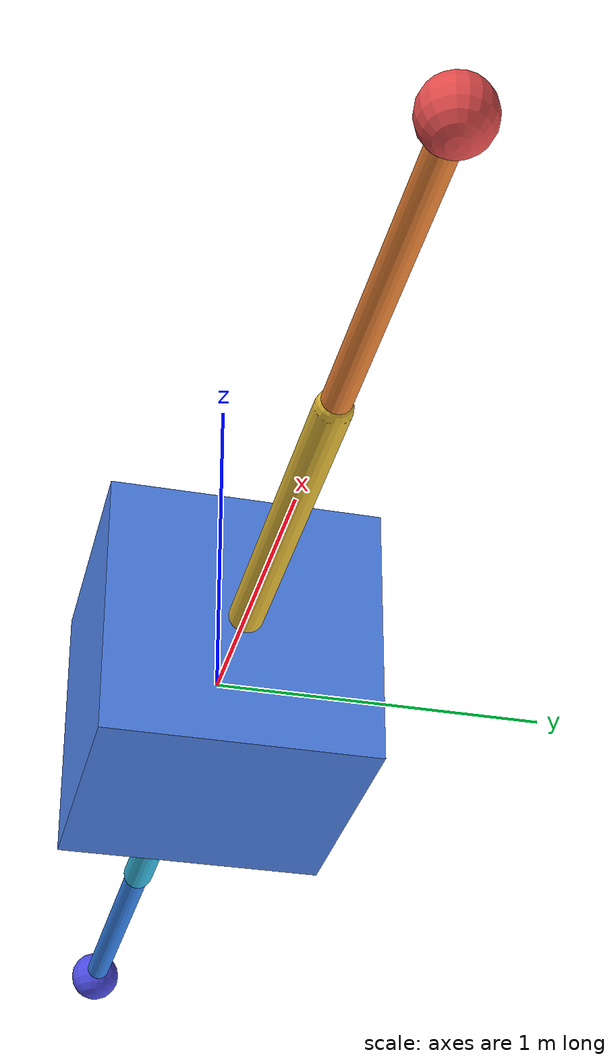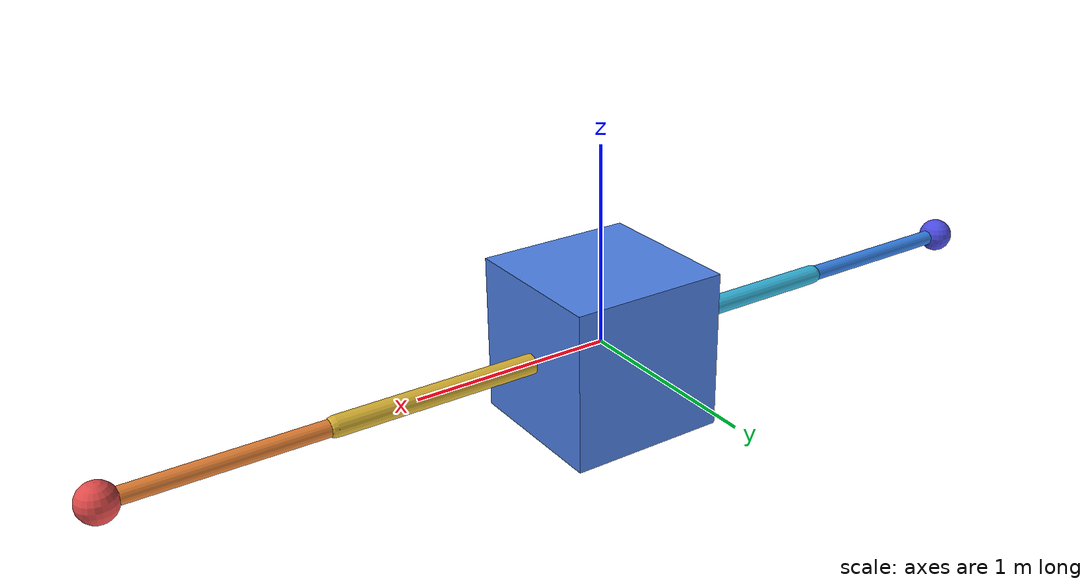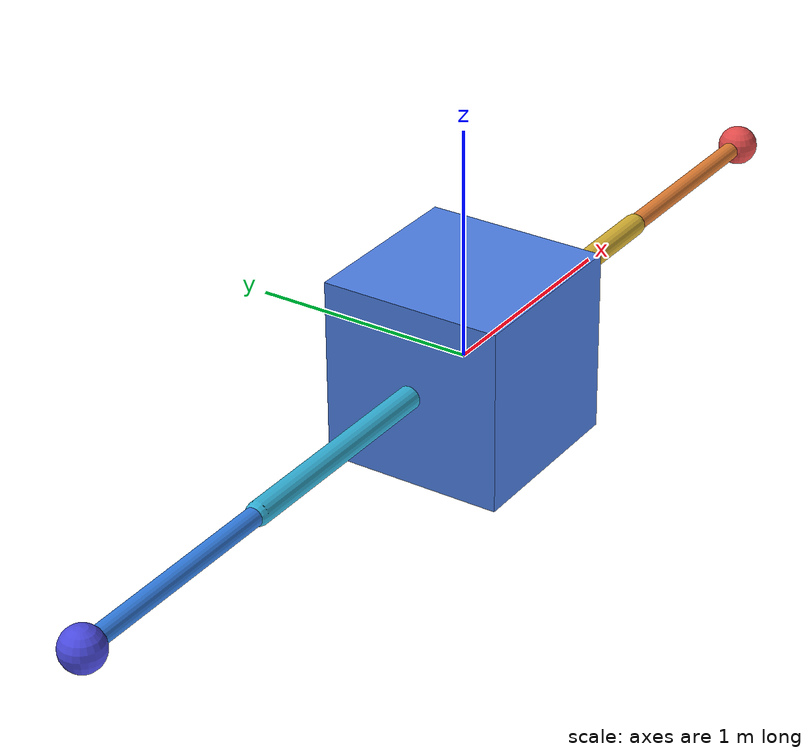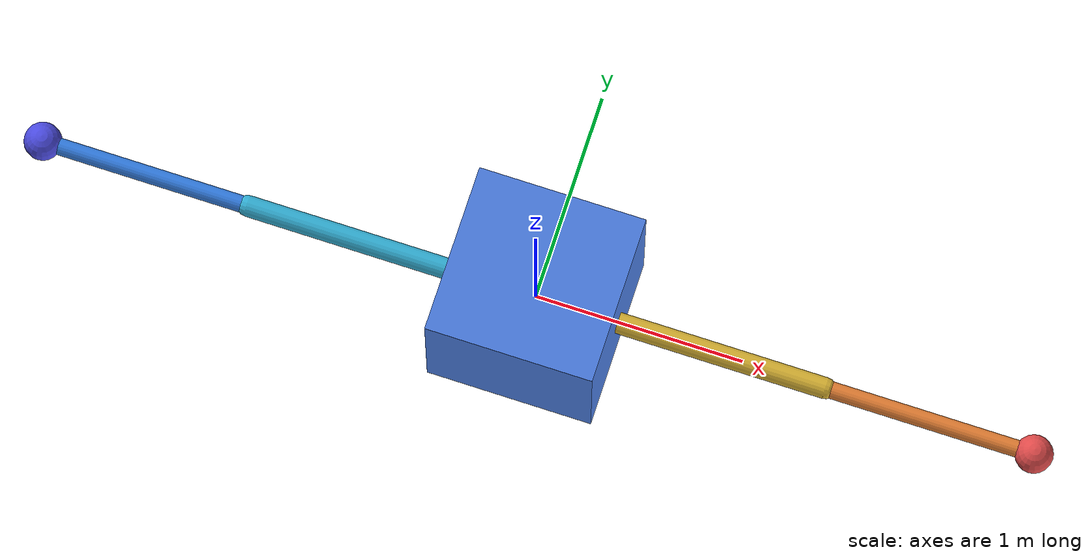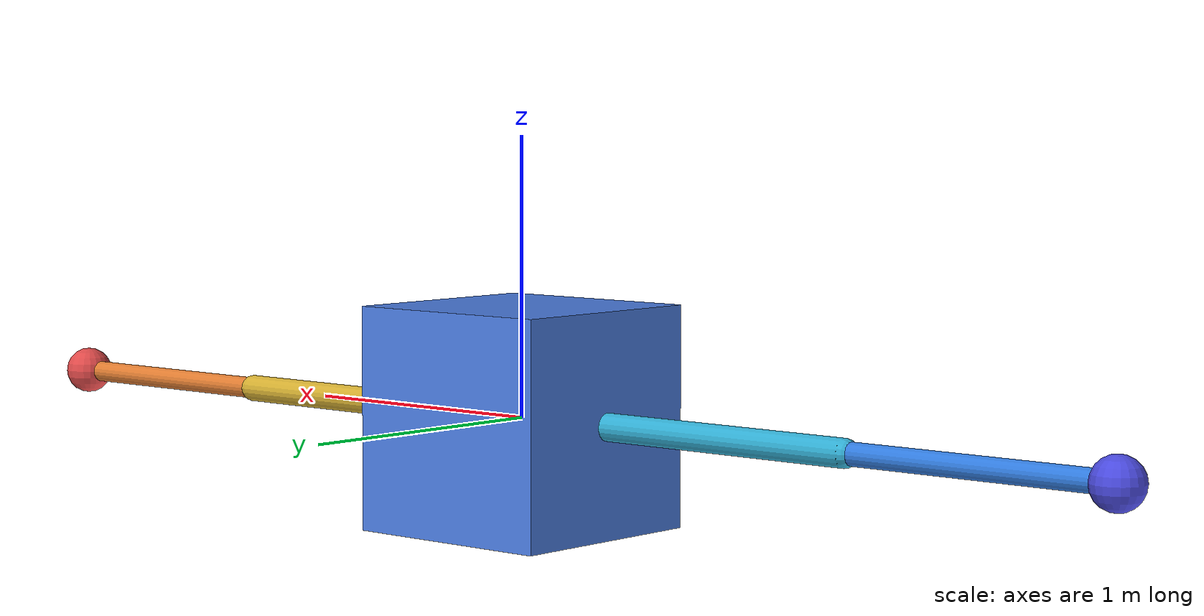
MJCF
<mujoco model="reorient_dualarm">
  <compiler angle="radian"/>
  <option timestep="0.01" gravity="0 0 0" integrator="RK4"/>

  <default>
    <joint damping="0.5" armature="0.05"/>
    <position kp="18" kv="12" ctrlrange="-3.14 3.14"/>
  </default>

  <worldbody>
    <body name="bus" pos="0 0 0">
      <freejoint name="base"/>
      <geom type="box" size="0.4 0.4 0.4" mass="40" rgba="0.3 0.5 0.9 1"/>

      <!-- Arm A on the +x face: 3-DOF shoulder (x,y,z) + elbow -->
      <body name="A_link1" pos="0.4 0 0">
        <joint name="A_sx" type="hinge" axis="1 0 0"/>
        <joint name="A_sy" type="hinge" axis="0 1 0"/>
        <joint name="A_sz" type="hinge" axis="0 0 1"/>
        <geom type="capsule" fromto="0 0 0 1.0 0 0" size="0.05" mass="8"
              rgba="0.85 0.7 0.2 1"/>
        <body name="A_link2" pos="1.0 0 0">
          <joint name="A_elbow" type="hinge" axis="0 1 0"/>
          <geom type="capsule" fromto="0 0 0 1.0 0 0" size="0.04" mass="8"
                rgba="0.9 0.5 0.2 1"/>
          <body name="A_ee" pos="1.0 0 0">
            <geom type="sphere" size="0.09" mass="4" rgba="0.9 0.3 0.3 1"/>
          </body>
        </body>
      </body>

      <!-- Arm B on the -x face: mirror of arm A -->
      <body name="B_link1" pos="-0.4 0 0">
        <joint name="B_sx" type="hinge" axis="1 0 0"/>
        <joint name="B_sy" type="hinge" axis="0 1 0"/>
        <joint name="B_sz" type="hinge" axis="0 0 1"/>
        <geom type="capsule" fromto="0 0 0 -1.0 0 0" size="0.05" mass="8"
              rgba="0.2 0.7 0.85 1"/>
        <body name="B_link2" pos="-1.0 0 0">
          <joint name="B_elbow" type="hinge" axis="0 1 0"/>
          <geom type="capsule" fromto="0 0 0 -1.0 0 0" size="0.04" mass="8"
                rgba="0.2 0.5 0.9 1"/>
          <body name="B_ee" pos="-1.0 0 0">
            <geom type="sphere" size="0.09" mass="4" rgba="0.3 0.3 0.9 1"/>
          </body>
        </body>
      </body>
    </body>
  </worldbody>

  <actuator>
    <position name="A_sx"    joint="A_sx"/>
    <position name="A_sy"    joint="A_sy"/>
    <position name="A_sz"    joint="A_sz"/>
    <position name="A_elbow" joint="A_elbow"/>
    <position name="B_sx"    joint="B_sx"/>
    <position name="B_sy"    joint="B_sy"/>
    <position name="B_sz"    joint="B_sz"/>
    <position name="B_elbow" joint="B_elbow"/>
  </actuator>

  <mjorbit use_j2="true" use_drag="true" use_srp="true" use_magnetic="true">
    <surface name="face_px" body="bus" cop="0.4 0 0"  normal="1 0 0"  area="0.64"/>
    <surface name="face_nx" body="bus" cop="-0.4 0 0" normal="-1 0 0" area="0.64"/>
    <surface name="face_py" body="bus" cop="0 0.4 0"  normal="0 1 0"  area="0.64"/>
    <surface name="face_ny" body="bus" cop="0 -0.4 0" normal="0 -1 0" area="0.64"/>
    <surface name="face_pz" body="bus" cop="0 0 0.4"  normal="0 0 1"  area="0.64"/>
    <surface name="face_nz" body="bus" cop="0 0 -0.4" normal="0 0 -1" area="0.64"/>
    <magnetic_body name="bus_dipole" body="bus" dipole="0.5 0.2 0.1"/>
  </mjorbit>
</mujoco>
